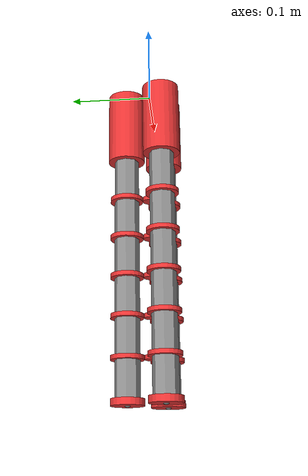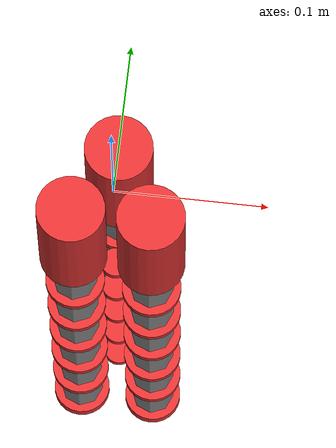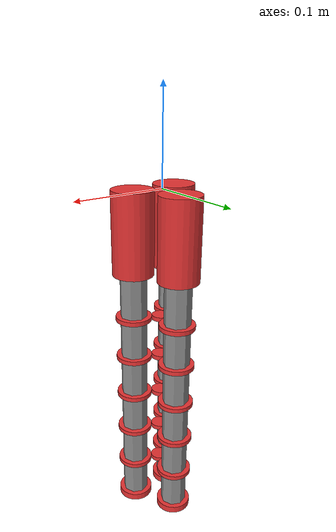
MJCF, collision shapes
<mujoco model="layer0">
    <asset>
        <material name="metal" rgba="0.58 0.58 0.58 1"/>
        <material name="silicone" rgba="0.1882 0.1882 0.1882 1"/>
        <material name="gray" rgba="0.4627 0.4627 0.4627 1"/>
        <material name="black" rgba="0.149 0.149 0.149 1"/>
        <material name="translucent_white_plastic" rgba="0.9 0.9 0.9 0.7" specular="0.8" shininess="0.6"/>
        <material name="matte_white_plastic" rgba="0.85 0.85 0.85 0.8" specular="0.2" shininess="0.1"/>
        <material name="acrylic_white_plastic" rgba="0.95 0.95 0.95 0.6" specular="0.9" shininess="0.9"/>
        <material name="clear_tube_plastic" rgba="1 1 1 0.35" specular="0.9" shininess="0.8" reflectance="0.2"/>
        <material name="matte_black_plastic" rgba="0.15 0.15 0.15 1" specular="0.1" shininess="0.1"/>
        <material name="polished_silver" rgba="0.8 0.8 0.8 1" specular="0.9" shininess="0.9"/>
        <mesh class="str" file="Cap.stl" />
        <mesh class="str" file="Mujoco_end.stl" />
        <mesh class="str" file="Mujoco_Fix_Ring.stl" />
    </asset>
    <default>
        <default class="hingeB">
            <joint stiffness="0.0755" damping="0.5" armature="0.005"/>
        </default>
        <default class="interZ">
            <joint type="slide" stiffness='5870' ref="-0.00120" armature="0.012" damping="7" frictionloss="0.2" />
        </default>
        <default class="secZ">
            <joint type="slide" stiffness='5870' ref="-0.00120" armature="0.035" damping="11" frictionloss="0.2"/>
        </default>
        <default class="str">
            <mesh scale="0.001 0.001 0.001"/>
            <general biastype="affine"/>
        </default>
        <default class="vis">
            <geom contype="0" conaffinity="0" density="0" group="0"/>
        </default>
        <default class="col">
            <geom contype="1" conaffinity="1" group="3" rgba="0.9 0.2 0.2 0.25"/>
        </default>
    </default>
    <worldbody>
        <body name='layer_core'>
            <inertial pos="0.00 0.00 -0.047" quat="1 0 0 0" mass="0.452" diaginertia="6.975e-4 6.975e-4 5.153e-4"/>
            <geom class="vis" type="mesh" mesh="Mujoco_end" pos="0 0 0" euler= '180 0 0 ' material = 'matte_black_plastic'/>
            <geom class="col" name="Mujoco_end_col_1" type="cylinder" size="0.0225 0.0451" pos="0 0.03 -0.0451"/>
            <geom class="col" name="Mujoco_end_col_2" type="cylinder" size="0.0225 0.0451" pos="0.025981 -0.015 -0.0451"/>
            <geom class="col" name="Mujoco_end_col_3" type="cylinder" size="0.0225 0.0451" pos="-0.025981 -0.015 -0.0451"/>
            <site name="layer00" pos="0 0.03 -0.0854 "/>
            <site name="layer01" pos="0 0.03 -0.0902 "/>
            <site name="layer10" pos="0.025981 -0.015 -0.0854 "/>
            <site name="layer11" pos="0.025981 -0.015 -0.0902 "/>
            <site name="layer20" pos="-0.025981 -0.015 -0.0854 "/>
            <site name="layer21" pos="-0.025981 -0.015 -0.0902 "/>
            <body name='sec_1' pos= '0 0 -0.1386' euler='180 0 0'>
                <inertial pos="0.00 0.00 0.0025" quat="1 0 0 0" mass="0.012" diaginertia="4.867e-6 4.867e-6 9.673e-6"/>
                <geom class="vis" type="mesh" mesh="Mujoco_Fix_Ring" pos="0 0 0" material = 'matte_black_plastic'/>
                <geom class="col" name="Mujoco_Fix_Ring_col_1_1" type="cylinder" size="0.02 0.0025" pos="0 -0.03 0.0025 "/>
                <geom class="col" name="Mujoco_Fix_Ring_col_1_2" type="cylinder" size="0.02 0.0025" pos="0.025981 0.015 0.0025 "/>
                <geom class="col" name="Mujoco_Fix_Ring_col_1_3" type="cylinder" size="0.02 0.0025" pos="-0.025981 0.015 0.0025 "/>
                <geom class="col" name="Mujoco_Fix_Ring_col_1_4" type="cylinder" size="0.01 0.0025" pos="0 0 0.0025 "/>
                <joint name="sec_1_joint_x" class="hingeB" type="hinge" axis="1 0 0" pos="0 0 -0.0242  " limited="true" range="-30 30"/>
                <joint name="sec_1_joint_y" class="hingeB" type="hinge" axis="0 1 0" pos="0 0 -0.0242  " limited="true" range="-30 30"/>
                <joint name="sec_1_joint_z" class='secZ' type="slide" axis="0 0 1" pos="0 0 -0.0242  " limited="true" range="-0.023 0.001" />
                <site name="layer06" pos="0 -0.03 0 "/>
                <site name="layer07" pos="0 -0.03 0.005 "/>
                <site name="layer16" pos="0.025981 0.015 0 "/>
                <site name="layer17" pos="0.025981 0.015 0.005 "/>
                <site name="layer26" pos="-0.025981 0.015 0 "/>
                <site name="layer27" pos="-0.025981 0.015 0.005 "/>
                <body name='sec_2' pos= '0 0 0.0484' euler='0 0 0'>
                    <inertial pos="0.00 0.00 0.0025" quat="1 0 0 0" mass="0.012" diaginertia="4.867e-6 4.867e-6 9.673e-6"/>
                    <geom class="vis" type="mesh" mesh="Mujoco_Fix_Ring" pos="0 0 0" material = 'matte_black_plastic'/>
                    <geom class="col" name="Mujoco_Fix_Ring_col_2_1" type="cylinder" size="0.02 0.0025" pos="0 -0.03 0.0025 "/>
                    <geom class="col" name="Mujoco_Fix_Ring_col_2_2" type="cylinder" size="0.02 0.0025" pos="0.025981 0.015 0.0025 "/>
                    <geom class="col" name="Mujoco_Fix_Ring_col_2_3" type="cylinder" size="0.02 0.0025" pos="-0.025981 0.015 0.0025 "/>
                    <geom class="col" name="Mujoco_Fix_Ring_col_2_4" type="cylinder" size="0.01 0.0025" pos="0 0 0.0025 "/>
                    <joint name="sec_2_joint_x" class="hingeB" type="hinge" axis="1 0 0" pos="0 0 -0.0242  " limited="true" range="-30 30"/>
                    <joint name="sec_2_joint_y" class="hingeB" type="hinge" axis="0 1 0" pos="0 0 -0.0242  " limited="true" range="-30 30"/>
                    <joint name="sec_2_joint_z" class='secZ' type="slide" axis="0 0 1" pos="0 0 -0.0242  " limited="true" range="-0.023 0.001" />
                    <site name="layer012" pos="0 -0.03 0 "/>
                    <site name="layer013" pos="0 -0.03 0.005 "/>
                    <site name="layer112" pos="0.025981 0.015 0 "/>
                    <site name="layer113" pos="0.025981 0.015 0.005 "/>
                    <site name="layer212" pos="-0.025981 0.015 0 "/>
                    <site name="layer213" pos="-0.025981 0.015 0.005 "/>
                    <body name='sec_3' pos= '0 0 0.0484' euler='0 0 0'>
                        <inertial pos="0.00 0.00 0.0025" quat="1 0 0 0" mass="0.012" diaginertia="4.867e-6 4.867e-6 9.673e-6"/>
                        <geom class="vis" type="mesh" mesh="Mujoco_Fix_Ring" pos="0 0 0" material = 'matte_black_plastic'/>
                        <geom class="col" name="Mujoco_Fix_Ring_col_3_1" type="cylinder" size="0.02 0.0025" pos="0 -0.03 0.0025 "/>
                        <geom class="col" name="Mujoco_Fix_Ring_col_3_2" type="cylinder" size="0.02 0.0025" pos="0.025981 0.015 0.0025 "/>
                        <geom class="col" name="Mujoco_Fix_Ring_col_3_3" type="cylinder" size="0.02 0.0025" pos="-0.025981 0.015 0.0025 "/>
                        <geom class="col" name="Mujoco_Fix_Ring_col_3_4" type="cylinder" size="0.01 0.0025" pos="0 0 0.0025 "/>
                        <joint name="sec_3_joint_x" class="hingeB" type="hinge" axis="1 0 0" pos="0 0 -0.0242  " limited="true" range="-30 30"/>
                        <joint name="sec_3_joint_y" class="hingeB" type="hinge" axis="0 1 0" pos="0 0 -0.0242  " limited="true" range="-30 30"/>
                        <joint name="sec_3_joint_z" class='secZ' type="slide" axis="0 0 1" pos="0 0 -0.0242  " limited="true" range="-0.023 0.001" />
                        <site name="layer018" pos="0 -0.03 0 "/>
                        <site name="layer019" pos="0 -0.03 0.005 "/>
                        <site name="layer118" pos="0.025981 0.015 0 "/>
                        <site name="layer119" pos="0.025981 0.015 0.005 "/>
                        <site name="layer218" pos="-0.025981 0.015 0 "/>
                        <site name="layer219" pos="-0.025981 0.015 0.005 "/>
                        <body name='sec_4' pos= '0 0 0.0484' euler='0 0 0'>
                            <inertial pos="0.00 0.00 0.0025" quat="1 0 0 0" mass="0.012" diaginertia="4.867e-6 4.867e-6 9.673e-6"/>
                            <geom class="vis" type="mesh" mesh="Mujoco_Fix_Ring" pos="0 0 0" material = 'matte_black_plastic'/>
                            <geom class="col" name="Mujoco_Fix_Ring_col_4_1" type="cylinder" size="0.02 0.0025" pos="0 -0.03 0.0025 "/>
                            <geom class="col" name="Mujoco_Fix_Ring_col_4_2" type="cylinder" size="0.02 0.0025" pos="0.025981 0.015 0.0025 "/>
                            <geom class="col" name="Mujoco_Fix_Ring_col_4_3" type="cylinder" size="0.02 0.0025" pos="-0.025981 0.015 0.0025 "/>
                            <geom class="col" name="Mujoco_Fix_Ring_col_4_4" type="cylinder" size="0.01 0.0025" pos="0 0 0.0025 "/>
                            <joint name="sec_4_joint_x" class="hingeB" type="hinge" axis="1 0 0" pos="0 0 -0.0242  " limited="true" range="-30 30"/>
                            <joint name="sec_4_joint_y" class="hingeB" type="hinge" axis="0 1 0" pos="0 0 -0.0242  " limited="true" range="-30 30"/>
                            <joint name="sec_4_joint_z" class='secZ' type="slide" axis="0 0 1" pos="0 0 -0.0242  " limited="true" range="-0.023 0.001" />
                            <site name="layer024" pos="0 -0.03 0 "/>
                            <site name="layer025" pos="0 -0.03 0.005 "/>
                            <site name="layer124" pos="0.025981 0.015 0 "/>
                            <site name="layer125" pos="0.025981 0.015 0.005 "/>
                            <site name="layer224" pos="-0.025981 0.015 0 "/>
                            <site name="layer225" pos="-0.025981 0.015 0.005 "/>
                            <body name='sec_5' pos= '0 0 0.0484' euler='0 0 0'>
                                <inertial pos="0.00 0.00 0.0025" quat="1 0 0 0" mass="0.012" diaginertia="4.867e-6 4.867e-6 9.673e-6"/>
                                <geom class="vis" type="mesh" mesh="Mujoco_Fix_Ring" pos="0 0 0" material = 'matte_black_plastic'/>
                                <geom class="col" name="Mujoco_Fix_Ring_col_5_1" type="cylinder" size="0.02 0.0025" pos="0 -0.03 0.0025 "/>
                                <geom class="col" name="Mujoco_Fix_Ring_col_5_2" type="cylinder" size="0.02 0.0025" pos="0.025981 0.015 0.0025 "/>
                                <geom class="col" name="Mujoco_Fix_Ring_col_5_3" type="cylinder" size="0.02 0.0025" pos="-0.025981 0.015 0.0025 "/>
                                <geom class="col" name="Mujoco_Fix_Ring_col_5_4" type="cylinder" size="0.01 0.0025" pos="0 0 0.0025 "/>
                                <joint name="sec_5_joint_x" class="hingeB" type="hinge" axis="1 0 0" pos="0 0 -0.0242" limited="true" range="-30 30"/>
                                <joint name="sec_5_joint_y" class="hingeB" type="hinge" axis="0 1 0" pos="0 0 -0.0242" limited="true" range="-30 30"/>
                                <joint name="sec_5_joint_z" class='secZ' type="slide" axis="0 0 1" pos="0 0 -0.0242" limited="true" range="-0.023 0.001" />
                                <site name="layer030" pos="0 -0.03 0 "/>
                                <site name="layer031" pos="0 -0.03 0.005 "/>
                                <site name="layer130" pos="0.025981 0.015 0 "/>
                                <site name="layer131" pos="0.025981 0.015 0.005 "/>
                                <site name="layer230" pos="-0.025981 0.015 0 "/>
                                <site name="layer231" pos="-0.025981 0.015 0.005 "/>
                                <body name='sec_6' pos= '0 0 0.0484' euler='0 0 0'>
                                    <inertial pos="0.00 0.00 0.0045" quat="1 0 0 0" mass="0.036" diaginertia="2.092e-6 2.092e-6 4.135e-6"/>
                                    <geom class="vis" type="mesh" mesh="Cap" pos="0 0 0"  material = 'matte_black_plastic'/>
                                    <geom class="col" name="Cap_1" type="cylinder" size="0.02 0.004" pos="0 -0.03 0.004 "/>
                                    <geom class="col" name="Cap_2" type="cylinder" size="0.02 0.004" pos="0.025981 0.015 0.004 "/>
                                    <geom class="col" name="Cap_3" type="cylinder" size="0.02 0.004" pos="-0.025981 0.015 0.004 "/>
                                    <joint name="sec_6_joint_x" class="hingeB" type="hinge" axis="1 0 0" pos="0 0 -0.0242  " limited="true" range="-30 30"/>
                                    <joint name="sec_6_joint_y" class="hingeB" type="hinge" axis="0 1 0" pos="0 0 -0.0242  " limited="true" range="-30 30"/>
                                    <joint name="sec_6_joint_z" class='secZ' type="slide" axis="0 0 1" pos="0 0 -0.0242  " limited="true" range="-0.010 0.001" />
                                    <site name="layer036" pos="0 -0.03 0.0048 "/>
                                    <site name="layer037" pos="0 -0.03 0 "/>
                                    <site name="layer136" pos="0.025981 0.015 0.0048 "/>
                                    <site name="layer137" pos="0.025981 0.015 0 "/>
                                    <site name="layer236" pos="-0.025981 0.015 0.0048 "/>
                                    <site name="layer237" pos="-0.025981 0.015 0 "/>
                                    <body name="mount" pos= '0 0 0.008' euler='180 0 180 '>
                                    </body>
                                </body>
                            </body>
                        </body>
                    </body>
                </body>
            </body>
        </body>
    </worldbody>
    <tendon >
        <spatial name="layer00" range=".15 .33" limited="true" width=".015" rgba="0.55 0.55 0.55 1" stiffness='128' damping= '2'>
            <site site="layer00"/>
            <site site="layer01"/>
            <site site="layer06"/>
            <site site="layer07"/>
            <site site="layer012"/>
            <site site="layer013"/>
            <site site="layer018"/>
            <site site="layer019"/>
            <site site="layer024"/>
            <site site="layer025"/>
            <site site="layer030"/>
            <site site="layer031"/>
            <site site="layer036"/>
            <site site="layer037"/>
        </spatial>
        <spatial name="layer01" range=".15 .33" limited="true" width=".015" rgba="0.55 0.55 0.55 1" stiffness='128' damping= '2'>
            <site site="layer10"/>
            <site site="layer11"/>
            <site site="layer16"/>
            <site site="layer17"/>
            <site site="layer112"/>
            <site site="layer113"/>
            <site site="layer118"/>
            <site site="layer119"/>
            <site site="layer124"/>
            <site site="layer125"/>
            <site site="layer130"/>
            <site site="layer131"/>
            <site site="layer136"/>
            <site site="layer137"/>
        </spatial>
        <spatial name="layer02" range=".15 .33" limited="true" width=".015" rgba="0.55 0.55 0.55 1" stiffness='128' damping= '2'>
            <site site="layer20"/>
            <site site="layer21"/>
            <site site="layer26"/>
            <site site="layer27"/>
            <site site="layer212"/>
            <site site="layer213"/>
            <site site="layer218"/>
            <site site="layer219"/>
            <site site="layer224"/>
            <site site="layer225"/>
            <site site="layer230"/>
            <site site="layer231"/>
            <site site="layer236"/>
            <site site="layer237"/>
        </spatial>
    </tendon>
    <equality>
        <joint joint1="sec_1_joint_x" joint2="sec_2_joint_x" polycoef="0 1 0 0 0"/>
        <joint joint1="sec_1_joint_y" joint2="sec_2_joint_y" polycoef="0 1 0 0 0"/>
        <joint joint1="sec_2_joint_x" joint2="sec_3_joint_x" polycoef="0 1 0 0 0"/>
        <joint joint1="sec_2_joint_y" joint2="sec_3_joint_y" polycoef="0 1 0 0 0"/>
        <joint joint1="sec_3_joint_x" joint2="sec_4_joint_x" polycoef="0 1 0 0 0"/>
        <joint joint1="sec_3_joint_y" joint2="sec_4_joint_y" polycoef="0 1 0 0 0"/>
        <joint joint1="sec_4_joint_x" joint2="sec_5_joint_x" polycoef="0 1 0 0 0"/>
        <joint joint1="sec_4_joint_y" joint2="sec_5_joint_y" polycoef="0 1 0 0 0"/>
        <joint joint1="sec_5_joint_x" joint2="sec_6_joint_x" polycoef="0 1 0 0 0"/>
        <joint joint1="sec_5_joint_y" joint2="sec_6_joint_y" polycoef="0 1 0 0 0"/>
    </equality>
</mujoco>
